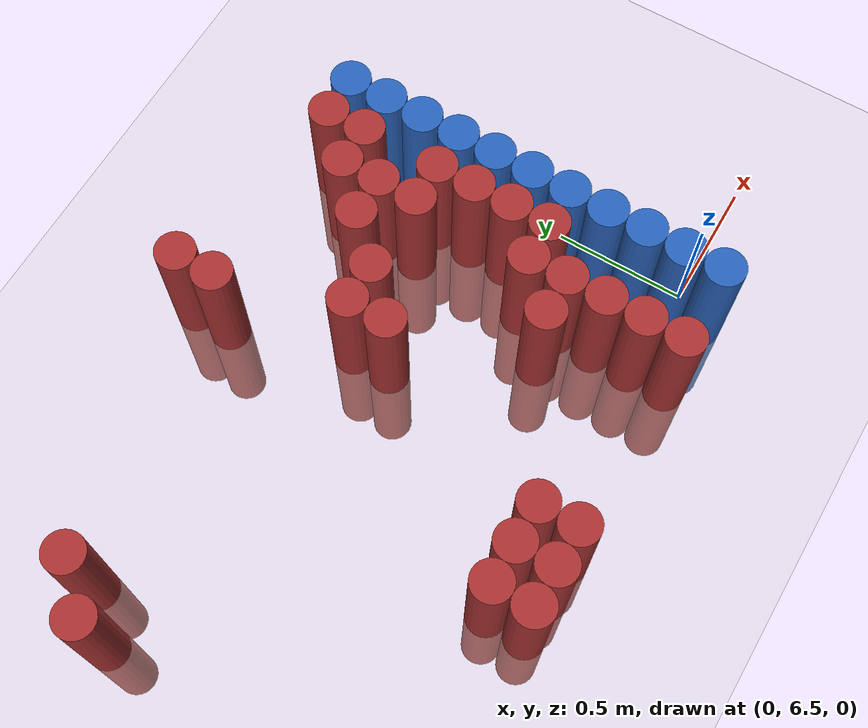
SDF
<sdf version="1.6">
 <world name="default">
  <model name="ground_plane">
   <static>1</static>
   <link name="link">
    <collision name="collision">
     <geometry><plane><normal>0 0 1</normal><size>100 100</size></plane></geometry>
     <surface><friction><ode><mu>100</mu><mu2>50</mu2></ode></friction></surface>
    </collision>
    <visual name="visual">
     <cast_shadows>0</cast_shadows>
     <geometry><plane><normal>0 0 1</normal><size>100 100</size></plane></geometry>
     <material>
      <script><uri>file://media/materials/scripts/gazebo.material</uri><name>Gazebo/Grey</name></script>
     </material>
    </visual>
   </link>
  </model>
  <model name="unit_cylinder_224">
   <static>1</static>
   <pose>-2.175000 7.575000 0.000000 0.000000 0.000000 0.000000</pose>
   <link name="link">
    <inertial>
     <mass>1</mass>
     <inertia><ixx>0.145833</ixx><ixy>0</ixy><ixz>0</ixz><iyy>0.145833</iyy><iyz>0</iyz><izz>0.125</izz></inertia>
    </inertial>
    <collision name="collision">
     <geometry><cylinder><radius>0.075000</radius><length>1</length></cylinder></geometry>
    </collision>
    <visual name="visual">
     <geometry><cylinder><radius>0.075000</radius><length>1</length></cylinder></geometry>
     <material>
      <ambient>0.648000 0.192000 0.192000 1</ambient>
      <diffuse>0.648000 0.192000 0.192000 1</diffuse>
     </material>
     <material>
      <script><name>Gazebo/Grey</name><uri>file://media/materials/scripts/gazebo.material</uri></script>
     </material>
    </visual>
    <sensor name="sensor_contact" type="contact"><contact><collision>collision</collision></contact></sensor>
   </link>
   <plugin filename="gz-sim-touchplugin-system" name="gz::sim::systems::TouchPlugin">
    <target>robot</target>
    <namespace>robot</namespace>
    <time>0.001</time>
    <enabled>true</enabled>
   </plugin>
  </model>
  <model name="unit_cylinder_230">
   <static>1</static>
   <pose>-2.025000 7.725000 0.000000 0.000000 0.000000 0.000000</pose>
   <link name="link">
    <inertial>
     <mass>1</mass>
     <inertia><ixx>0.145833</ixx><ixy>0</ixy><ixz>0</ixz><iyy>0.145833</iyy><iyz>0</iyz><izz>0.125</izz></inertia>
    </inertial>
    <collision name="collision">
     <geometry><cylinder><radius>0.075000</radius><length>1</length></cylinder></geometry>
    </collision>
    <visual name="visual">
     <geometry><cylinder><radius>0.075000</radius><length>1</length></cylinder></geometry>
     <material>
      <ambient>0.648000 0.192000 0.192000 1</ambient>
      <diffuse>0.648000 0.192000 0.192000 1</diffuse>
     </material>
     <material>
      <script><name>Gazebo/Grey</name><uri>file://media/materials/scripts/gazebo.material</uri></script>
     </material>
    </visual>
    <sensor name="sensor_contact" type="contact"><contact><collision>collision</collision></contact></sensor>
   </link>
   <plugin filename="gz-sim-touchplugin-system" name="gz::sim::systems::TouchPlugin">
    <target>robot</target>
    <namespace>robot</namespace>
    <time>0.001</time>
    <enabled>true</enabled>
   </plugin>
  </model>
  <model name="unit_cylinder_236">
   <static>1</static>
   <pose>-1.425000 6.375000 0.000000 0.000000 0.000000 0.000000</pose>
   <link name="link">
    <inertial>
     <mass>1</mass>
     <inertia><ixx>0.145833</ixx><ixy>0</ixy><ixz>0</ixz><iyy>0.145833</iyy><iyz>0</iyz><izz>0.125</izz></inertia>
    </inertial>
    <collision name="collision">
     <geometry><cylinder><radius>0.075000</radius><length>1</length></cylinder></geometry>
    </collision>
    <visual name="visual">
     <geometry><cylinder><radius>0.075000</radius><length>1</length></cylinder></geometry>
     <material>
      <ambient>0.648000 0.192000 0.192000 1</ambient>
      <diffuse>0.648000 0.192000 0.192000 1</diffuse>
     </material>
     <material>
      <script><name>Gazebo/Grey</name><uri>file://media/materials/scripts/gazebo.material</uri></script>
     </material>
    </visual>
    <sensor name="sensor_contact" type="contact"><contact><collision>collision</collision></contact></sensor>
   </link>
   <plugin filename="gz-sim-touchplugin-system" name="gz::sim::systems::TouchPlugin">
    <target>robot</target>
    <namespace>robot</namespace>
    <time>0.001</time>
    <enabled>true</enabled>
   </plugin>
  </model>
  <model name="unit_cylinder_237">
   <static>1</static>
   <pose>-1.425000 6.525000 0.000000 0.000000 0.000000 0.000000</pose>
   <link name="link">
    <inertial>
     <mass>1</mass>
     <inertia><ixx>0.145833</ixx><ixy>0</ixy><ixz>0</ixz><iyy>0.145833</iyy><iyz>0</iyz><izz>0.125</izz></inertia>
    </inertial>
    <collision name="collision">
     <geometry><cylinder><radius>0.075000</radius><length>1</length></cylinder></geometry>
    </collision>
    <visual name="visual">
     <geometry><cylinder><radius>0.075000</radius><length>1</length></cylinder></geometry>
     <material>
      <ambient>0.648000 0.192000 0.192000 1</ambient>
      <diffuse>0.648000 0.192000 0.192000 1</diffuse>
     </material>
     <material>
      <script><name>Gazebo/Grey</name><uri>file://media/materials/scripts/gazebo.material</uri></script>
     </material>
    </visual>
    <sensor name="sensor_contact" type="contact"><contact><collision>collision</collision></contact></sensor>
   </link>
   <plugin filename="gz-sim-touchplugin-system" name="gz::sim::systems::TouchPlugin">
    <target>robot</target>
    <namespace>robot</namespace>
    <time>0.001</time>
    <enabled>true</enabled>
   </plugin>
  </model>
  <model name="unit_cylinder_239">
   <static>1</static>
   <pose>-1.275000 6.375000 0.000000 0.000000 0.000000 0.000000</pose>
   <link name="link">
    <inertial>
     <mass>1</mass>
     <inertia><ixx>0.145833</ixx><ixy>0</ixy><ixz>0</ixz><iyy>0.145833</iyy><iyz>0</iyz><izz>0.125</izz></inertia>
    </inertial>
    <collision name="collision">
     <geometry><cylinder><radius>0.075000</radius><length>1</length></cylinder></geometry>
    </collision>
    <visual name="visual">
     <geometry><cylinder><radius>0.075000</radius><length>1</length></cylinder></geometry>
     <material>
      <ambient>0.648000 0.192000 0.192000 1</ambient>
      <diffuse>0.648000 0.192000 0.192000 1</diffuse>
     </material>
     <material>
      <script><name>Gazebo/Grey</name><uri>file://media/materials/scripts/gazebo.material</uri></script>
     </material>
    </visual>
    <sensor name="sensor_contact" type="contact"><contact><collision>collision</collision></contact></sensor>
   </link>
   <plugin filename="gz-sim-touchplugin-system" name="gz::sim::systems::TouchPlugin">
    <target>robot</target>
    <namespace>robot</namespace>
    <time>0.001</time>
    <enabled>true</enabled>
   </plugin>
  </model>
  <model name="unit_cylinder_240">
   <static>1</static>
   <pose>-1.275000 6.525000 0.000000 0.000000 0.000000 0.000000</pose>
   <link name="link">
    <inertial>
     <mass>1</mass>
     <inertia><ixx>0.145833</ixx><ixy>0</ixy><ixz>0</ixz><iyy>0.145833</iyy><iyz>0</iyz><izz>0.125</izz></inertia>
    </inertial>
    <collision name="collision">
     <geometry><cylinder><radius>0.075000</radius><length>1</length></cylinder></geometry>
    </collision>
    <visual name="visual">
     <geometry><cylinder><radius>0.075000</radius><length>1</length></cylinder></geometry>
     <material>
      <ambient>0.648000 0.192000 0.192000 1</ambient>
      <diffuse>0.648000 0.192000 0.192000 1</diffuse>
     </material>
     <material>
      <script><name>Gazebo/Grey</name><uri>file://media/materials/scripts/gazebo.material</uri></script>
     </material>
    </visual>
    <sensor name="sensor_contact" type="contact"><contact><collision>collision</collision></contact></sensor>
   </link>
   <plugin filename="gz-sim-touchplugin-system" name="gz::sim::systems::TouchPlugin">
    <target>robot</target>
    <namespace>robot</namespace>
    <time>0.001</time>
    <enabled>true</enabled>
   </plugin>
  </model>
  <model name="unit_cylinder_241">
   <static>1</static>
   <pose>-1.125000 6.375000 0.000000 0.000000 0.000000 0.000000</pose>
   <link name="link">
    <inertial>
     <mass>1</mass>
     <inertia><ixx>0.145833</ixx><ixy>0</ixy><ixz>0</ixz><iyy>0.145833</iyy><iyz>0</iyz><izz>0.125</izz></inertia>
    </inertial>
    <collision name="collision">
     <geometry><cylinder><radius>0.075000</radius><length>1</length></cylinder></geometry>
    </collision>
    <visual name="visual">
     <geometry><cylinder><radius>0.075000</radius><length>1</length></cylinder></geometry>
     <material>
      <ambient>0.648000 0.192000 0.192000 1</ambient>
      <diffuse>0.648000 0.192000 0.192000 1</diffuse>
     </material>
     <material>
      <script><name>Gazebo/Grey</name><uri>file://media/materials/scripts/gazebo.material</uri></script>
     </material>
    </visual>
    <sensor name="sensor_contact" type="contact"><contact><collision>collision</collision></contact></sensor>
   </link>
   <plugin filename="gz-sim-touchplugin-system" name="gz::sim::systems::TouchPlugin">
    <target>robot</target>
    <namespace>robot</namespace>
    <time>0.001</time>
    <enabled>true</enabled>
   </plugin>
  </model>
  <model name="unit_cylinder_242">
   <static>1</static>
   <pose>-1.125000 6.525000 0.000000 0.000000 0.000000 0.000000</pose>
   <link name="link">
    <inertial>
     <mass>1</mass>
     <inertia><ixx>0.145833</ixx><ixy>0</ixy><ixz>0</ixz><iyy>0.145833</iyy><iyz>0</iyz><izz>0.125</izz></inertia>
    </inertial>
    <collision name="collision">
     <geometry><cylinder><radius>0.075000</radius><length>1</length></cylinder></geometry>
    </collision>
    <visual name="visual">
     <geometry><cylinder><radius>0.075000</radius><length>1</length></cylinder></geometry>
     <material>
      <ambient>0.648000 0.192000 0.192000 1</ambient>
      <diffuse>0.648000 0.192000 0.192000 1</diffuse>
     </material>
     <material>
      <script><name>Gazebo/Grey</name><uri>file://media/materials/scripts/gazebo.material</uri></script>
     </material>
    </visual>
    <sensor name="sensor_contact" type="contact"><contact><collision>collision</collision></contact></sensor>
   </link>
   <plugin filename="gz-sim-touchplugin-system" name="gz::sim::systems::TouchPlugin">
    <target>robot</target>
    <namespace>robot</namespace>
    <time>0.001</time>
    <enabled>true</enabled>
   </plugin>
  </model>
  <model name="unit_cylinder_243">
   <static>1</static>
   <pose>-0.975000 7.875000 0.000000 0.000000 0.000000 0.000000</pose>
   <link name="link">
    <inertial>
     <mass>1</mass>
     <inertia><ixx>0.145833</ixx><ixy>0</ixy><ixz>0</ixz><iyy>0.145833</iyy><iyz>0</iyz><izz>0.125</izz></inertia>
    </inertial>
    <collision name="collision">
     <geometry><cylinder><radius>0.075000</radius><length>1</length></cylinder></geometry>
    </collision>
    <visual name="visual">
     <geometry><cylinder><radius>0.075000</radius><length>1</length></cylinder></geometry>
     <material>
      <ambient>0.648000 0.192000 0.192000 1</ambient>
      <diffuse>0.648000 0.192000 0.192000 1</diffuse>
     </material>
     <material>
      <script><name>Gazebo/Grey</name><uri>file://media/materials/scripts/gazebo.material</uri></script>
     </material>
    </visual>
    <sensor name="sensor_contact" type="contact"><contact><collision>collision</collision></contact></sensor>
   </link>
   <plugin filename="gz-sim-touchplugin-system" name="gz::sim::systems::TouchPlugin">
    <target>robot</target>
    <namespace>robot</namespace>
    <time>0.001</time>
    <enabled>true</enabled>
   </plugin>
  </model>
  <model name="unit_cylinder_244">
   <static>1</static>
   <pose>-0.975000 8.025000 0.000000 0.000000 0.000000 0.000000</pose>
   <link name="link">
    <inertial>
     <mass>1</mass>
     <inertia><ixx>0.145833</ixx><ixy>0</ixy><ixz>0</ixz><iyy>0.145833</iyy><iyz>0</iyz><izz>0.125</izz></inertia>
    </inertial>
    <collision name="collision">
     <geometry><cylinder><radius>0.075000</radius><length>1</length></cylinder></geometry>
    </collision>
    <visual name="visual">
     <geometry><cylinder><radius>0.075000</radius><length>1</length></cylinder></geometry>
     <material>
      <ambient>0.648000 0.192000 0.192000 1</ambient>
      <diffuse>0.648000 0.192000 0.192000 1</diffuse>
     </material>
     <material>
      <script><name>Gazebo/Grey</name><uri>file://media/materials/scripts/gazebo.material</uri></script>
     </material>
    </visual>
    <sensor name="sensor_contact" type="contact"><contact><collision>collision</collision></contact></sensor>
   </link>
   <plugin filename="gz-sim-touchplugin-system" name="gz::sim::systems::TouchPlugin">
    <target>robot</target>
    <namespace>robot</namespace>
    <time>0.001</time>
    <enabled>true</enabled>
   </plugin>
  </model>
  <model name="unit_cylinder_245">
   <static>1</static>
   <pose>-0.825000 7.275000 0.000000 0.000000 0.000000 0.000000</pose>
   <link name="link">
    <inertial>
     <mass>1</mass>
     <inertia><ixx>0.145833</ixx><ixy>0</ixy><ixz>0</ixz><iyy>0.145833</iyy><iyz>0</iyz><izz>0.125</izz></inertia>
    </inertial>
    <collision name="collision">
     <geometry><cylinder><radius>0.075000</radius><length>1</length></cylinder></geometry>
    </collision>
    <visual name="visual">
     <geometry><cylinder><radius>0.075000</radius><length>1</length></cylinder></geometry>
     <material>
      <ambient>0.648000 0.192000 0.192000 1</ambient>
      <diffuse>0.648000 0.192000 0.192000 1</diffuse>
     </material>
     <material>
      <script><name>Gazebo/Grey</name><uri>file://media/materials/scripts/gazebo.material</uri></script>
     </material>
    </visual>
    <sensor name="sensor_contact" type="contact"><contact><collision>collision</collision></contact></sensor>
   </link>
   <plugin filename="gz-sim-touchplugin-system" name="gz::sim::systems::TouchPlugin">
    <target>robot</target>
    <namespace>robot</namespace>
    <time>0.001</time>
    <enabled>true</enabled>
   </plugin>
  </model>
  <model name="unit_cylinder_246">
   <static>1</static>
   <pose>-0.825000 7.425000 0.000000 0.000000 0.000000 0.000000</pose>
   <link name="link">
    <inertial>
     <mass>1</mass>
     <inertia><ixx>0.145833</ixx><ixy>0</ixy><ixz>0</ixz><iyy>0.145833</iyy><iyz>0</iyz><izz>0.125</izz></inertia>
    </inertial>
    <collision name="collision">
     <geometry><cylinder><radius>0.075000</radius><length>1</length></cylinder></geometry>
    </collision>
    <visual name="visual">
     <geometry><cylinder><radius>0.075000</radius><length>1</length></cylinder></geometry>
     <material>
      <ambient>0.648000 0.192000 0.192000 1</ambient>
      <diffuse>0.648000 0.192000 0.192000 1</diffuse>
     </material>
     <material>
      <script><name>Gazebo/Grey</name><uri>file://media/materials/scripts/gazebo.material</uri></script>
     </material>
    </visual>
    <sensor name="sensor_contact" type="contact"><contact><collision>collision</collision></contact></sensor>
   </link>
   <plugin filename="gz-sim-touchplugin-system" name="gz::sim::systems::TouchPlugin">
    <target>robot</target>
    <namespace>robot</namespace>
    <time>0.001</time>
    <enabled>true</enabled>
   </plugin>
  </model>
  <model name="unit_cylinder_252">
   <static>1</static>
   <pose>-0.675000 7.425000 0.000000 0.000000 0.000000 0.000000</pose>
   <link name="link">
    <inertial>
     <mass>1</mass>
     <inertia><ixx>0.145833</ixx><ixy>0</ixy><ixz>0</ixz><iyy>0.145833</iyy><iyz>0</iyz><izz>0.125</izz></inertia>
    </inertial>
    <collision name="collision">
     <geometry><cylinder><radius>0.075000</radius><length>1</length></cylinder></geometry>
    </collision>
    <visual name="visual">
     <geometry><cylinder><radius>0.075000</radius><length>1</length></cylinder></geometry>
     <material>
      <ambient>0.648000 0.192000 0.192000 1</ambient>
      <diffuse>0.648000 0.192000 0.192000 1</diffuse>
     </material>
     <material>
      <script><name>Gazebo/Grey</name><uri>file://media/materials/scripts/gazebo.material</uri></script>
     </material>
    </visual>
    <sensor name="sensor_contact" type="contact"><contact><collision>collision</collision></contact></sensor>
   </link>
   <plugin filename="gz-sim-touchplugin-system" name="gz::sim::systems::TouchPlugin">
    <target>robot</target>
    <namespace>robot</namespace>
    <time>0.001</time>
    <enabled>true</enabled>
   </plugin>
  </model>
  <model name="unit_cylinder_259">
   <static>1</static>
   <pose>-0.525000 6.825000 0.000000 0.000000 0.000000 0.000000</pose>
   <link name="link">
    <inertial>
     <mass>1</mass>
     <inertia><ixx>0.145833</ixx><ixy>0</ixy><ixz>0</ixz><iyy>0.145833</iyy><iyz>0</iyz><izz>0.125</izz></inertia>
    </inertial>
    <collision name="collision">
     <geometry><cylinder><radius>0.075000</radius><length>1</length></cylinder></geometry>
    </collision>
    <visual name="visual">
     <geometry><cylinder><radius>0.075000</radius><length>1</length></cylinder></geometry>
     <material>
      <ambient>0.648000 0.192000 0.192000 1</ambient>
      <diffuse>0.648000 0.192000 0.192000 1</diffuse>
     </material>
     <material>
      <script><name>Gazebo/Grey</name><uri>file://media/materials/scripts/gazebo.material</uri></script>
     </material>
    </visual>
    <sensor name="sensor_contact" type="contact"><contact><collision>collision</collision></contact></sensor>
   </link>
   <plugin filename="gz-sim-touchplugin-system" name="gz::sim::systems::TouchPlugin">
    <target>robot</target>
    <namespace>robot</namespace>
    <time>0.001</time>
    <enabled>true</enabled>
   </plugin>
  </model>
  <model name="unit_cylinder_260">
   <static>1</static>
   <pose>-0.525000 7.575000 0.000000 0.000000 0.000000 0.000000</pose>
   <link name="link">
    <inertial>
     <mass>1</mass>
     <inertia><ixx>0.145833</ixx><ixy>0</ixy><ixz>0</ixz><iyy>0.145833</iyy><iyz>0</iyz><izz>0.125</izz></inertia>
    </inertial>
    <collision name="collision">
     <geometry><cylinder><radius>0.075000</radius><length>1</length></cylinder></geometry>
    </collision>
    <visual name="visual">
     <geometry><cylinder><radius>0.075000</radius><length>1</length></cylinder></geometry>
     <material>
      <ambient>0.648000 0.192000 0.192000 1</ambient>
      <diffuse>0.648000 0.192000 0.192000 1</diffuse>
     </material>
     <material>
      <script><name>Gazebo/Grey</name><uri>file://media/materials/scripts/gazebo.material</uri></script>
     </material>
    </visual>
    <sensor name="sensor_contact" type="contact"><contact><collision>collision</collision></contact></sensor>
   </link>
   <plugin filename="gz-sim-touchplugin-system" name="gz::sim::systems::TouchPlugin">
    <target>robot</target>
    <namespace>robot</namespace>
    <time>0.001</time>
    <enabled>true</enabled>
   </plugin>
  </model>
  <model name="unit_cylinder_267">
   <static>1</static>
   <pose>-0.375000 6.375000 0.000000 0.000000 0.000000 0.000000</pose>
   <link name="link">
    <inertial>
     <mass>1</mass>
     <inertia><ixx>0.145833</ixx><ixy>0</ixy><ixz>0</ixz><iyy>0.145833</iyy><iyz>0</iyz><izz>0.125</izz></inertia>
    </inertial>
    <collision name="collision">
     <geometry><cylinder><radius>0.075000</radius><length>1</length></cylinder></geometry>
    </collision>
    <visual name="visual">
     <geometry><cylinder><radius>0.075000</radius><length>1</length></cylinder></geometry>
     <material>
      <ambient>0.648000 0.192000 0.192000 1</ambient>
      <diffuse>0.648000 0.192000 0.192000 1</diffuse>
     </material>
     <material>
      <script><name>Gazebo/Grey</name><uri>file://media/materials/scripts/gazebo.material</uri></script>
     </material>
    </visual>
    <sensor name="sensor_contact" type="contact"><contact><collision>collision</collision></contact></sensor>
   </link>
   <plugin filename="gz-sim-touchplugin-system" name="gz::sim::systems::TouchPlugin">
    <target>robot</target>
    <namespace>robot</namespace>
    <time>0.001</time>
    <enabled>true</enabled>
   </plugin>
  </model>
  <model name="unit_cylinder_268">
   <static>1</static>
   <pose>-0.375000 6.525000 0.000000 0.000000 0.000000 0.000000</pose>
   <link name="link">
    <inertial>
     <mass>1</mass>
     <inertia><ixx>0.145833</ixx><ixy>0</ixy><ixz>0</ixz><iyy>0.145833</iyy><iyz>0</iyz><izz>0.125</izz></inertia>
    </inertial>
    <collision name="collision">
     <geometry><cylinder><radius>0.075000</radius><length>1</length></cylinder></geometry>
    </collision>
    <visual name="visual">
     <geometry><cylinder><radius>0.075000</radius><length>1</length></cylinder></geometry>
     <material>
      <ambient>0.648000 0.192000 0.192000 1</ambient>
      <diffuse>0.648000 0.192000 0.192000 1</diffuse>
     </material>
     <material>
      <script><name>Gazebo/Grey</name><uri>file://media/materials/scripts/gazebo.material</uri></script>
     </material>
    </visual>
    <sensor name="sensor_contact" type="contact"><contact><collision>collision</collision></contact></sensor>
   </link>
   <plugin filename="gz-sim-touchplugin-system" name="gz::sim::systems::TouchPlugin">
    <target>robot</target>
    <namespace>robot</namespace>
    <time>0.001</time>
    <enabled>true</enabled>
   </plugin>
  </model>
  <model name="unit_cylinder_269">
   <static>1</static>
   <pose>-0.375000 6.675000 0.000000 0.000000 0.000000 0.000000</pose>
   <link name="link">
    <inertial>
     <mass>1</mass>
     <inertia><ixx>0.145833</ixx><ixy>0</ixy><ixz>0</ixz><iyy>0.145833</iyy><iyz>0</iyz><izz>0.125</izz></inertia>
    </inertial>
    <collision name="collision">
     <geometry><cylinder><radius>0.075000</radius><length>1</length></cylinder></geometry>
    </collision>
    <visual name="visual">
     <geometry><cylinder><radius>0.075000</radius><length>1</length></cylinder></geometry>
     <material>
      <ambient>0.648000 0.192000 0.192000 1</ambient>
      <diffuse>0.648000 0.192000 0.192000 1</diffuse>
     </material>
     <material>
      <script><name>Gazebo/Grey</name><uri>file://media/materials/scripts/gazebo.material</uri></script>
     </material>
    </visual>
    <sensor name="sensor_contact" type="contact"><contact><collision>collision</collision></contact></sensor>
   </link>
   <plugin filename="gz-sim-touchplugin-system" name="gz::sim::systems::TouchPlugin">
    <target>robot</target>
    <namespace>robot</namespace>
    <time>0.001</time>
    <enabled>true</enabled>
   </plugin>
  </model>
  <model name="unit_cylinder_270">
   <static>1</static>
   <pose>-0.375000 6.825000 0.000000 0.000000 0.000000 0.000000</pose>
   <link name="link">
    <inertial>
     <mass>1</mass>
     <inertia><ixx>0.145833</ixx><ixy>0</ixy><ixz>0</ixz><iyy>0.145833</iyy><iyz>0</iyz><izz>0.125</izz></inertia>
    </inertial>
    <collision name="collision">
     <geometry><cylinder><radius>0.075000</radius><length>1</length></cylinder></geometry>
    </collision>
    <visual name="visual">
     <geometry><cylinder><radius>0.075000</radius><length>1</length></cylinder></geometry>
     <material>
      <ambient>0.648000 0.192000 0.192000 1</ambient>
      <diffuse>0.648000 0.192000 0.192000 1</diffuse>
     </material>
     <material>
      <script><name>Gazebo/Grey</name><uri>file://media/materials/scripts/gazebo.material</uri></script>
     </material>
    </visual>
    <sensor name="sensor_contact" type="contact"><contact><collision>collision</collision></contact></sensor>
   </link>
   <plugin filename="gz-sim-touchplugin-system" name="gz::sim::systems::TouchPlugin">
    <target>robot</target>
    <namespace>robot</namespace>
    <time>0.001</time>
    <enabled>true</enabled>
   </plugin>
  </model>
  <model name="unit_cylinder_271">
   <static>1</static>
   <pose>-0.375000 6.975000 0.000000 0.000000 0.000000 0.000000</pose>
   <link name="link">
    <inertial>
     <mass>1</mass>
     <inertia><ixx>0.145833</ixx><ixy>0</ixy><ixz>0</ixz><iyy>0.145833</iyy><iyz>0</iyz><izz>0.125</izz></inertia>
    </inertial>
    <collision name="collision">
     <geometry><cylinder><radius>0.075000</radius><length>1</length></cylinder></geometry>
    </collision>
    <visual name="visual">
     <geometry><cylinder><radius>0.075000</radius><length>1</length></cylinder></geometry>
     <material>
      <ambient>0.648000 0.192000 0.192000 1</ambient>
      <diffuse>0.648000 0.192000 0.192000 1</diffuse>
     </material>
     <material>
      <script><name>Gazebo/Grey</name><uri>file://media/materials/scripts/gazebo.material</uri></script>
     </material>
    </visual>
    <sensor name="sensor_contact" type="contact"><contact><collision>collision</collision></contact></sensor>
   </link>
   <plugin filename="gz-sim-touchplugin-system" name="gz::sim::systems::TouchPlugin">
    <target>robot</target>
    <namespace>robot</namespace>
    <time>0.001</time>
    <enabled>true</enabled>
   </plugin>
  </model>
  <model name="unit_cylinder_272">
   <static>1</static>
   <pose>-0.375000 7.425000 0.000000 0.000000 0.000000 0.000000</pose>
   <link name="link">
    <inertial>
     <mass>1</mass>
     <inertia><ixx>0.145833</ixx><ixy>0</ixy><ixz>0</ixz><iyy>0.145833</iyy><iyz>0</iyz><izz>0.125</izz></inertia>
    </inertial>
    <collision name="collision">
     <geometry><cylinder><radius>0.075000</radius><length>1</length></cylinder></geometry>
    </collision>
    <visual name="visual">
     <geometry><cylinder><radius>0.075000</radius><length>1</length></cylinder></geometry>
     <material>
      <ambient>0.648000 0.192000 0.192000 1</ambient>
      <diffuse>0.648000 0.192000 0.192000 1</diffuse>
     </material>
     <material>
      <script><name>Gazebo/Grey</name><uri>file://media/materials/scripts/gazebo.material</uri></script>
     </material>
    </visual>
    <sensor name="sensor_contact" type="contact"><contact><collision>collision</collision></contact></sensor>
   </link>
   <plugin filename="gz-sim-touchplugin-system" name="gz::sim::systems::TouchPlugin">
    <target>robot</target>
    <namespace>robot</namespace>
    <time>0.001</time>
    <enabled>true</enabled>
   </plugin>
  </model>
  <model name="unit_cylinder_273">
   <static>1</static>
   <pose>-0.375000 7.575000 0.000000 0.000000 0.000000 0.000000</pose>
   <link name="link">
    <inertial>
     <mass>1</mass>
     <inertia><ixx>0.145833</ixx><ixy>0</ixy><ixz>0</ixz><iyy>0.145833</iyy><iyz>0</iyz><izz>0.125</izz></inertia>
    </inertial>
    <collision name="collision">
     <geometry><cylinder><radius>0.075000</radius><length>1</length></cylinder></geometry>
    </collision>
    <visual name="visual">
     <geometry><cylinder><radius>0.075000</radius><length>1</length></cylinder></geometry>
     <material>
      <ambient>0.648000 0.192000 0.192000 1</ambient>
      <diffuse>0.648000 0.192000 0.192000 1</diffuse>
     </material>
     <material>
      <script><name>Gazebo/Grey</name><uri>file://media/materials/scripts/gazebo.material</uri></script>
     </material>
    </visual>
    <sensor name="sensor_contact" type="contact"><contact><collision>collision</collision></contact></sensor>
   </link>
   <plugin filename="gz-sim-touchplugin-system" name="gz::sim::systems::TouchPlugin">
    <target>robot</target>
    <namespace>robot</namespace>
    <time>0.001</time>
    <enabled>true</enabled>
   </plugin>
  </model>
  <model name="unit_cylinder_274">
   <static>1</static>
   <pose>-0.375000 7.725000 0.000000 0.000000 0.000000 0.000000</pose>
   <link name="link">
    <inertial>
     <mass>1</mass>
     <inertia><ixx>0.145833</ixx><ixy>0</ixy><ixz>0</ixz><iyy>0.145833</iyy><iyz>0</iyz><izz>0.125</izz></inertia>
    </inertial>
    <collision name="collision">
     <geometry><cylinder><radius>0.075000</radius><length>1</length></cylinder></geometry>
    </collision>
    <visual name="visual">
     <geometry><cylinder><radius>0.075000</radius><length>1</length></cylinder></geometry>
     <material>
      <ambient>0.648000 0.192000 0.192000 1</ambient>
      <diffuse>0.648000 0.192000 0.192000 1</diffuse>
     </material>
     <material>
      <script><name>Gazebo/Grey</name><uri>file://media/materials/scripts/gazebo.material</uri></script>
     </material>
    </visual>
    <sensor name="sensor_contact" type="contact"><contact><collision>collision</collision></contact></sensor>
   </link>
   <plugin filename="gz-sim-touchplugin-system" name="gz::sim::systems::TouchPlugin">
    <target>robot</target>
    <namespace>robot</namespace>
    <time>0.001</time>
    <enabled>true</enabled>
   </plugin>
  </model>
  <model name="unit_cylinder_282">
   <static>1</static>
   <pose>-0.225000 6.975000 0.000000 0.000000 0.000000 0.000000</pose>
   <link name="link">
    <inertial>
     <mass>1</mass>
     <inertia><ixx>0.145833</ixx><ixy>0</ixy><ixz>0</ixz><iyy>0.145833</iyy><iyz>0</iyz><izz>0.125</izz></inertia>
    </inertial>
    <collision name="collision">
     <geometry><cylinder><radius>0.075000</radius><length>1</length></cylinder></geometry>
    </collision>
    <visual name="visual">
     <geometry><cylinder><radius>0.075000</radius><length>1</length></cylinder></geometry>
     <material>
      <ambient>0.648000 0.192000 0.192000 1</ambient>
      <diffuse>0.648000 0.192000 0.192000 1</diffuse>
     </material>
     <material>
      <script><name>Gazebo/Grey</name><uri>file://media/materials/scripts/gazebo.material</uri></script>
     </material>
    </visual>
    <sensor name="sensor_contact" type="contact"><contact><collision>collision</collision></contact></sensor>
   </link>
   <plugin filename="gz-sim-touchplugin-system" name="gz::sim::systems::TouchPlugin">
    <target>robot</target>
    <namespace>robot</namespace>
    <time>0.001</time>
    <enabled>true</enabled>
   </plugin>
  </model>
  <model name="unit_cylinder_283">
   <static>1</static>
   <pose>-0.225000 7.125000 0.000000 0.000000 0.000000 0.000000</pose>
   <link name="link">
    <inertial>
     <mass>1</mass>
     <inertia><ixx>0.145833</ixx><ixy>0</ixy><ixz>0</ixz><iyy>0.145833</iyy><iyz>0</iyz><izz>0.125</izz></inertia>
    </inertial>
    <collision name="collision">
     <geometry><cylinder><radius>0.075000</radius><length>1</length></cylinder></geometry>
    </collision>
    <visual name="visual">
     <geometry><cylinder><radius>0.075000</radius><length>1</length></cylinder></geometry>
     <material>
      <ambient>0.648000 0.192000 0.192000 1</ambient>
      <diffuse>0.648000 0.192000 0.192000 1</diffuse>
     </material>
     <material>
      <script><name>Gazebo/Grey</name><uri>file://media/materials/scripts/gazebo.material</uri></script>
     </material>
    </visual>
    <sensor name="sensor_contact" type="contact"><contact><collision>collision</collision></contact></sensor>
   </link>
   <plugin filename="gz-sim-touchplugin-system" name="gz::sim::systems::TouchPlugin">
    <target>robot</target>
    <namespace>robot</namespace>
    <time>0.001</time>
    <enabled>true</enabled>
   </plugin>
  </model>
  <model name="unit_cylinder_284">
   <static>1</static>
   <pose>-0.225000 7.275000 0.000000 0.000000 0.000000 0.000000</pose>
   <link name="link">
    <inertial>
     <mass>1</mass>
     <inertia><ixx>0.145833</ixx><ixy>0</ixy><ixz>0</ixz><iyy>0.145833</iyy><iyz>0</iyz><izz>0.125</izz></inertia>
    </inertial>
    <collision name="collision">
     <geometry><cylinder><radius>0.075000</radius><length>1</length></cylinder></geometry>
    </collision>
    <visual name="visual">
     <geometry><cylinder><radius>0.075000</radius><length>1</length></cylinder></geometry>
     <material>
      <ambient>0.648000 0.192000 0.192000 1</ambient>
      <diffuse>0.648000 0.192000 0.192000 1</diffuse>
     </material>
     <material>
      <script><name>Gazebo/Grey</name><uri>file://media/materials/scripts/gazebo.material</uri></script>
     </material>
    </visual>
    <sensor name="sensor_contact" type="contact"><contact><collision>collision</collision></contact></sensor>
   </link>
   <plugin filename="gz-sim-touchplugin-system" name="gz::sim::systems::TouchPlugin">
    <target>robot</target>
    <namespace>robot</namespace>
    <time>0.001</time>
    <enabled>true</enabled>
   </plugin>
  </model>
  <model name="unit_cylinder_285">
   <static>1</static>
   <pose>-0.225000 7.425000 0.000000 0.000000 0.000000 0.000000</pose>
   <link name="link">
    <inertial>
     <mass>1</mass>
     <inertia><ixx>0.145833</ixx><ixy>0</ixy><ixz>0</ixz><iyy>0.145833</iyy><iyz>0</iyz><izz>0.125</izz></inertia>
    </inertial>
    <collision name="collision">
     <geometry><cylinder><radius>0.075000</radius><length>1</length></cylinder></geometry>
    </collision>
    <visual name="visual">
     <geometry><cylinder><radius>0.075000</radius><length>1</length></cylinder></geometry>
     <material>
      <ambient>0.648000 0.192000 0.192000 1</ambient>
      <diffuse>0.648000 0.192000 0.192000 1</diffuse>
     </material>
     <material>
      <script><name>Gazebo/Grey</name><uri>file://media/materials/scripts/gazebo.material</uri></script>
     </material>
    </visual>
    <sensor name="sensor_contact" type="contact"><contact><collision>collision</collision></contact></sensor>
   </link>
   <plugin filename="gz-sim-touchplugin-system" name="gz::sim::systems::TouchPlugin">
    <target>robot</target>
    <namespace>robot</namespace>
    <time>0.001</time>
    <enabled>true</enabled>
   </plugin>
  </model>
  <model name="unit_cylinder_286">
   <static>1</static>
   <pose>-0.225000 7.725000 0.000000 0.000000 0.000000 0.000000</pose>
   <link name="link">
    <inertial>
     <mass>1</mass>
     <inertia><ixx>0.145833</ixx><ixy>0</ixy><ixz>0</ixz><iyy>0.145833</iyy><iyz>0</iyz><izz>0.125</izz></inertia>
    </inertial>
    <collision name="collision">
     <geometry><cylinder><radius>0.075000</radius><length>1</length></cylinder></geometry>
    </collision>
    <visual name="visual">
     <geometry><cylinder><radius>0.075000</radius><length>1</length></cylinder></geometry>
     <material>
      <ambient>0.648000 0.192000 0.192000 1</ambient>
      <diffuse>0.648000 0.192000 0.192000 1</diffuse>
     </material>
     <material>
      <script><name>Gazebo/Grey</name><uri>file://media/materials/scripts/gazebo.material</uri></script>
     </material>
    </visual>
    <sensor name="sensor_contact" type="contact"><contact><collision>collision</collision></contact></sensor>
   </link>
   <plugin filename="gz-sim-touchplugin-system" name="gz::sim::systems::TouchPlugin">
    <target>robot</target>
    <namespace>robot</namespace>
    <time>0.001</time>
    <enabled>true</enabled>
   </plugin>
  </model>
  <model name="unit_cylinder_287">
   <static>1</static>
   <pose>-0.225000 7.875000 0.000000 0.000000 0.000000 0.000000</pose>
   <link name="link">
    <inertial>
     <mass>1</mass>
     <inertia><ixx>0.145833</ixx><ixy>0</ixy><ixz>0</ixz><iyy>0.145833</iyy><iyz>0</iyz><izz>0.125</izz></inertia>
    </inertial>
    <collision name="collision">
     <geometry><cylinder><radius>0.075000</radius><length>1</length></cylinder></geometry>
    </collision>
    <visual name="visual">
     <geometry><cylinder><radius>0.075000</radius><length>1</length></cylinder></geometry>
     <material>
      <ambient>0.648000 0.192000 0.192000 1</ambient>
      <diffuse>0.648000 0.192000 0.192000 1</diffuse>
     </material>
     <material>
      <script><name>Gazebo/Grey</name><uri>file://media/materials/scripts/gazebo.material</uri></script>
     </material>
    </visual>
    <sensor name="sensor_contact" type="contact"><contact><collision>collision</collision></contact></sensor>
   </link>
   <plugin filename="gz-sim-touchplugin-system" name="gz::sim::systems::TouchPlugin">
    <target>robot</target>
    <namespace>robot</namespace>
    <time>0.001</time>
    <enabled>true</enabled>
   </plugin>
  </model>
  <model name="unit_cylinder_302">
   <static>1</static>
   <pose>-0.075000 6.375000 0.000000 0.000000 0.000000 0.000000</pose>
   <link name="link">
    <inertial>
     <mass>1</mass>
     <inertia><ixx>0.145833</ixx><ixy>0</ixy><ixz>0</ixz><iyy>0.145833</iyy><iyz>0</iyz><izz>0.125</izz></inertia>
    </inertial>
    <collision name="collision">
     <geometry><cylinder><radius>0.075000</radius><length>1</length></cylinder></geometry>
    </collision>
    <visual name="visual">
     <geometry><cylinder><radius>0.075000</radius><length>1</length></cylinder></geometry>
     <material>
      <ambient>0.152000 0.379000 0.720000 1</ambient>
      <diffuse>0.152000 0.379000 0.720000 1</diffuse>
     </material>
     <material>
      <script><name>Gazebo/Grey</name><uri>file://media/materials/scripts/gazebo.material</uri></script>
     </material>
    </visual>
    <sensor name="sensor_contact" type="contact"><contact><collision>collision</collision></contact></sensor>
   </link>
   <plugin filename="gz-sim-touchplugin-system" name="gz::sim::systems::TouchPlugin">
    <target>robot</target>
    <namespace>robot</namespace>
    <time>0.001</time>
    <enabled>true</enabled>
   </plugin>
  </model>
  <model name="unit_cylinder_303">
   <static>1</static>
   <pose>-0.075000 6.525000 0.000000 0.000000 0.000000 0.000000</pose>
   <link name="link">
    <inertial>
     <mass>1</mass>
     <inertia><ixx>0.145833</ixx><ixy>0</ixy><ixz>0</ixz><iyy>0.145833</iyy><iyz>0</iyz><izz>0.125</izz></inertia>
    </inertial>
    <collision name="collision">
     <geometry><cylinder><radius>0.075000</radius><length>1</length></cylinder></geometry>
    </collision>
    <visual name="visual">
     <geometry><cylinder><radius>0.075000</radius><length>1</length></cylinder></geometry>
     <material>
      <ambient>0.152000 0.379000 0.720000 1</ambient>
      <diffuse>0.152000 0.379000 0.720000 1</diffuse>
     </material>
     <material>
      <script><name>Gazebo/Grey</name><uri>file://media/materials/scripts/gazebo.material</uri></script>
     </material>
    </visual>
    <sensor name="sensor_contact" type="contact"><contact><collision>collision</collision></contact></sensor>
   </link>
   <plugin filename="gz-sim-touchplugin-system" name="gz::sim::systems::TouchPlugin">
    <target>robot</target>
    <namespace>robot</namespace>
    <time>0.001</time>
    <enabled>true</enabled>
   </plugin>
  </model>
  <model name="unit_cylinder_304">
   <static>1</static>
   <pose>-0.075000 6.675000 0.000000 0.000000 0.000000 0.000000</pose>
   <link name="link">
    <inertial>
     <mass>1</mass>
     <inertia><ixx>0.145833</ixx><ixy>0</ixy><ixz>0</ixz><iyy>0.145833</iyy><iyz>0</iyz><izz>0.125</izz></inertia>
    </inertial>
    <collision name="collision">
     <geometry><cylinder><radius>0.075000</radius><length>1</length></cylinder></geometry>
    </collision>
    <visual name="visual">
     <geometry><cylinder><radius>0.075000</radius><length>1</length></cylinder></geometry>
     <material>
      <ambient>0.152000 0.379000 0.720000 1</ambient>
      <diffuse>0.152000 0.379000 0.720000 1</diffuse>
     </material>
     <material>
      <script><name>Gazebo/Grey</name><uri>file://media/materials/scripts/gazebo.material</uri></script>
     </material>
    </visual>
    <sensor name="sensor_contact" type="contact"><contact><collision>collision</collision></contact></sensor>
   </link>
   <plugin filename="gz-sim-touchplugin-system" name="gz::sim::systems::TouchPlugin">
    <target>robot</target>
    <namespace>robot</namespace>
    <time>0.001</time>
    <enabled>true</enabled>
   </plugin>
  </model>
  <model name="unit_cylinder_305">
   <static>1</static>
   <pose>-0.075000 6.825000 0.000000 0.000000 0.000000 0.000000</pose>
   <link name="link">
    <inertial>
     <mass>1</mass>
     <inertia><ixx>0.145833</ixx><ixy>0</ixy><ixz>0</ixz><iyy>0.145833</iyy><iyz>0</iyz><izz>0.125</izz></inertia>
    </inertial>
    <collision name="collision">
     <geometry><cylinder><radius>0.075000</radius><length>1</length></cylinder></geometry>
    </collision>
    <visual name="visual">
     <geometry><cylinder><radius>0.075000</radius><length>1</length></cylinder></geometry>
     <material>
      <ambient>0.152000 0.379000 0.720000 1</ambient>
      <diffuse>0.152000 0.379000 0.720000 1</diffuse>
     </material>
     <material>
      <script><name>Gazebo/Grey</name><uri>file://media/materials/scripts/gazebo.material</uri></script>
     </material>
    </visual>
    <sensor name="sensor_contact" type="contact"><contact><collision>collision</collision></contact></sensor>
   </link>
   <plugin filename="gz-sim-touchplugin-system" name="gz::sim::systems::TouchPlugin">
    <target>robot</target>
    <namespace>robot</namespace>
    <time>0.001</time>
    <enabled>true</enabled>
   </plugin>
  </model>
  <model name="unit_cylinder_306">
   <static>1</static>
   <pose>-0.075000 6.975000 0.000000 0.000000 0.000000 0.000000</pose>
   <link name="link">
    <inertial>
     <mass>1</mass>
     <inertia><ixx>0.145833</ixx><ixy>0</ixy><ixz>0</ixz><iyy>0.145833</iyy><iyz>0</iyz><izz>0.125</izz></inertia>
    </inertial>
    <collision name="collision">
     <geometry><cylinder><radius>0.075000</radius><length>1</length></cylinder></geometry>
    </collision>
    <visual name="visual">
     <geometry><cylinder><radius>0.075000</radius><length>1</length></cylinder></geometry>
     <material>
      <ambient>0.152000 0.379000 0.720000 1</ambient>
      <diffuse>0.152000 0.379000 0.720000 1</diffuse>
     </material>
     <material>
      <script><name>Gazebo/Grey</name><uri>file://media/materials/scripts/gazebo.material</uri></script>
     </material>
    </visual>
    <sensor name="sensor_contact" type="contact"><contact><collision>collision</collision></contact></sensor>
   </link>
   <plugin filename="gz-sim-touchplugin-system" name="gz::sim::systems::TouchPlugin">
    <target>robot</target>
    <namespace>robot</namespace>
    <time>0.001</time>
    <enabled>true</enabled>
   </plugin>
  </model>
  <model name="unit_cylinder_307">
   <static>1</static>
   <pose>-0.075000 7.125000 0.000000 0.000000 0.000000 0.000000</pose>
   <link name="link">
    <inertial>
     <mass>1</mass>
     <inertia><ixx>0.145833</ixx><ixy>0</ixy><ixz>0</ixz><iyy>0.145833</iyy><iyz>0</iyz><izz>0.125</izz></inertia>
    </inertial>
    <collision name="collision">
     <geometry><cylinder><radius>0.075000</radius><length>1</length></cylinder></geometry>
    </collision>
    <visual name="visual">
     <geometry><cylinder><radius>0.075000</radius><length>1</length></cylinder></geometry>
     <material>
      <ambient>0.152000 0.379000 0.720000 1</ambient>
      <diffuse>0.152000 0.379000 0.720000 1</diffuse>
     </material>
     <material>
      <script><name>Gazebo/Grey</name><uri>file://media/materials/scripts/gazebo.material</uri></script>
     </material>
    </visual>
    <sensor name="sensor_contact" type="contact"><contact><collision>collision</collision></contact></sensor>
   </link>
   <plugin filename="gz-sim-touchplugin-system" name="gz::sim::systems::TouchPlugin">
    <target>robot</target>
    <namespace>robot</namespace>
    <time>0.001</time>
    <enabled>true</enabled>
   </plugin>
  </model>
  <model name="unit_cylinder_308">
   <static>1</static>
   <pose>-0.075000 7.275000 0.000000 0.000000 0.000000 0.000000</pose>
   <link name="link">
    <inertial>
     <mass>1</mass>
     <inertia><ixx>0.145833</ixx><ixy>0</ixy><ixz>0</ixz><iyy>0.145833</iyy><iyz>0</iyz><izz>0.125</izz></inertia>
    </inertial>
    <collision name="collision">
     <geometry><cylinder><radius>0.075000</radius><length>1</length></cylinder></geometry>
    </collision>
    <visual name="visual">
     <geometry><cylinder><radius>0.075000</radius><length>1</length></cylinder></geometry>
     <material>
      <ambient>0.152000 0.379000 0.720000 1</ambient>
      <diffuse>0.152000 0.379000 0.720000 1</diffuse>
     </material>
     <material>
      <script><name>Gazebo/Grey</name><uri>file://media/materials/scripts/gazebo.material</uri></script>
     </material>
    </visual>
    <sensor name="sensor_contact" type="contact"><contact><collision>collision</collision></contact></sensor>
   </link>
   <plugin filename="gz-sim-touchplugin-system" name="gz::sim::systems::TouchPlugin">
    <target>robot</target>
    <namespace>robot</namespace>
    <time>0.001</time>
    <enabled>true</enabled>
   </plugin>
  </model>
  <model name="unit_cylinder_309">
   <static>1</static>
   <pose>-0.075000 7.425000 0.000000 0.000000 0.000000 0.000000</pose>
   <link name="link">
    <inertial>
     <mass>1</mass>
     <inertia><ixx>0.145833</ixx><ixy>0</ixy><ixz>0</ixz><iyy>0.145833</iyy><iyz>0</iyz><izz>0.125</izz></inertia>
    </inertial>
    <collision name="collision">
     <geometry><cylinder><radius>0.075000</radius><length>1</length></cylinder></geometry>
    </collision>
    <visual name="visual">
     <geometry><cylinder><radius>0.075000</radius><length>1</length></cylinder></geometry>
     <material>
      <ambient>0.152000 0.379000 0.720000 1</ambient>
      <diffuse>0.152000 0.379000 0.720000 1</diffuse>
     </material>
     <material>
      <script><name>Gazebo/Grey</name><uri>file://media/materials/scripts/gazebo.material</uri></script>
     </material>
    </visual>
    <sensor name="sensor_contact" type="contact"><contact><collision>collision</collision></contact></sensor>
   </link>
   <plugin filename="gz-sim-touchplugin-system" name="gz::sim::systems::TouchPlugin">
    <target>robot</target>
    <namespace>robot</namespace>
    <time>0.001</time>
    <enabled>true</enabled>
   </plugin>
  </model>
  <model name="unit_cylinder_310">
   <static>1</static>
   <pose>-0.075000 7.575000 0.000000 0.000000 0.000000 0.000000</pose>
   <link name="link">
    <inertial>
     <mass>1</mass>
     <inertia><ixx>0.145833</ixx><ixy>0</ixy><ixz>0</ixz><iyy>0.145833</iyy><iyz>0</iyz><izz>0.125</izz></inertia>
    </inertial>
    <collision name="collision">
     <geometry><cylinder><radius>0.075000</radius><length>1</length></cylinder></geometry>
    </collision>
    <visual name="visual">
     <geometry><cylinder><radius>0.075000</radius><length>1</length></cylinder></geometry>
     <material>
      <ambient>0.152000 0.379000 0.720000 1</ambient>
      <diffuse>0.152000 0.379000 0.720000 1</diffuse>
     </material>
     <material>
      <script><name>Gazebo/Grey</name><uri>file://media/materials/scripts/gazebo.material</uri></script>
     </material>
    </visual>
    <sensor name="sensor_contact" type="contact"><contact><collision>collision</collision></contact></sensor>
   </link>
   <plugin filename="gz-sim-touchplugin-system" name="gz::sim::systems::TouchPlugin">
    <target>robot</target>
    <namespace>robot</namespace>
    <time>0.001</time>
    <enabled>true</enabled>
   </plugin>
  </model>
  <model name="unit_cylinder_311">
   <static>1</static>
   <pose>-0.075000 7.725000 0.000000 0.000000 0.000000 0.000000</pose>
   <link name="link">
    <inertial>
     <mass>1</mass>
     <inertia><ixx>0.145833</ixx><ixy>0</ixy><ixz>0</ixz><iyy>0.145833</iyy><iyz>0</iyz><izz>0.125</izz></inertia>
    </inertial>
    <collision name="collision">
     <geometry><cylinder><radius>0.075000</radius><length>1</length></cylinder></geometry>
    </collision>
    <visual name="visual">
     <geometry><cylinder><radius>0.075000</radius><length>1</length></cylinder></geometry>
     <material>
      <ambient>0.152000 0.379000 0.720000 1</ambient>
      <diffuse>0.152000 0.379000 0.720000 1</diffuse>
     </material>
     <material>
      <script><name>Gazebo/Grey</name><uri>file://media/materials/scripts/gazebo.material</uri></script>
     </material>
    </visual>
    <sensor name="sensor_contact" type="contact"><contact><collision>collision</collision></contact></sensor>
   </link>
   <plugin filename="gz-sim-touchplugin-system" name="gz::sim::systems::TouchPlugin">
    <target>robot</target>
    <namespace>robot</namespace>
    <time>0.001</time>
    <enabled>true</enabled>
   </plugin>
  </model>
  <model name="unit_cylinder_312">
   <static>1</static>
   <pose>-0.075000 7.875000 0.000000 0.000000 0.000000 0.000000</pose>
   <link name="link">
    <inertial>
     <mass>1</mass>
     <inertia><ixx>0.145833</ixx><ixy>0</ixy><ixz>0</ixz><iyy>0.145833</iyy><iyz>0</iyz><izz>0.125</izz></inertia>
    </inertial>
    <collision name="collision">
     <geometry><cylinder><radius>0.075000</radius><length>1</length></cylinder></geometry>
    </collision>
    <visual name="visual">
     <geometry><cylinder><radius>0.075000</radius><length>1</length></cylinder></geometry>
     <material>
      <ambient>0.152000 0.379000 0.720000 1</ambient>
      <diffuse>0.152000 0.379000 0.720000 1</diffuse>
     </material>
     <material>
      <script><name>Gazebo/Grey</name><uri>file://media/materials/scripts/gazebo.material</uri></script>
     </material>
    </visual>
    <sensor name="sensor_contact" type="contact"><contact><collision>collision</collision></contact></sensor>
   </link>
   <plugin filename="gz-sim-touchplugin-system" name="gz::sim::systems::TouchPlugin">
    <target>robot</target>
    <namespace>robot</namespace>
    <time>0.001</time>
    <enabled>true</enabled>
   </plugin>
  </model>
 </world>
</sdf>
